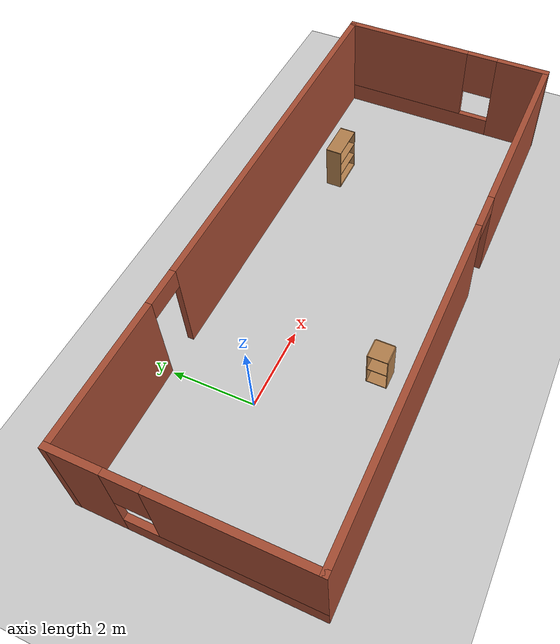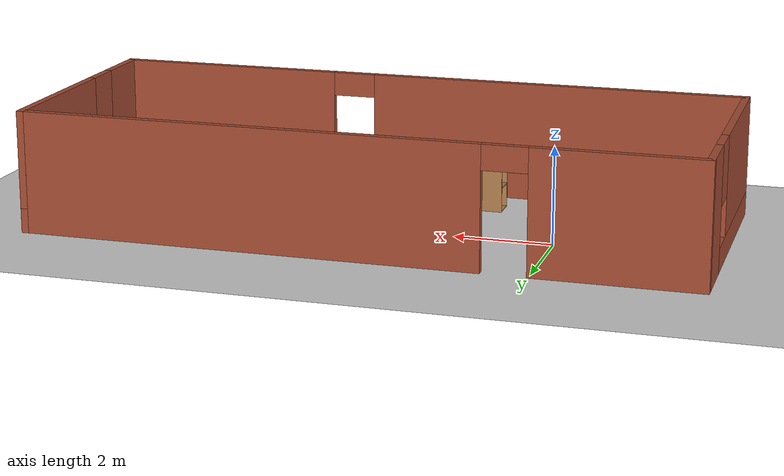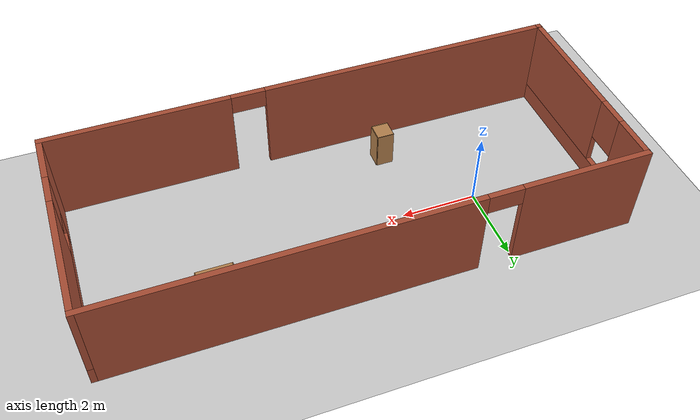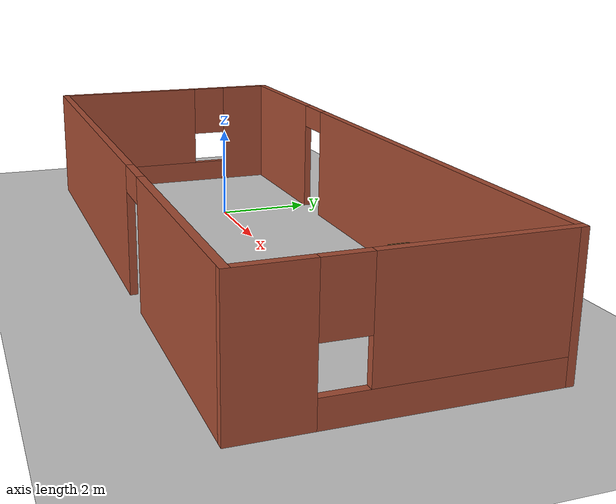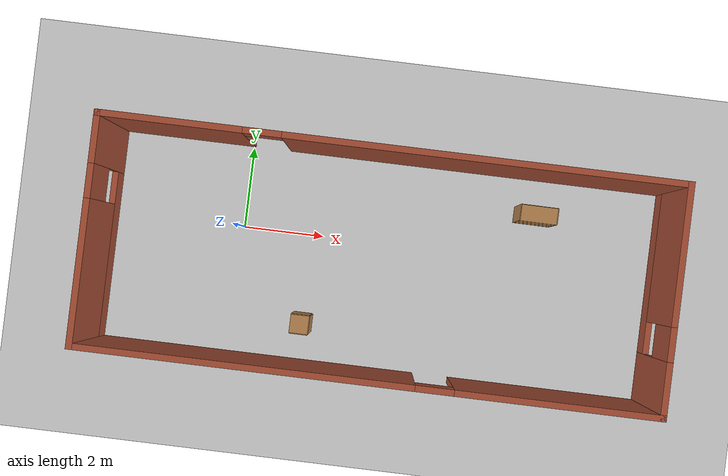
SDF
<sdf version="1.7">
 <world name="default">
  <light name="sun" type="directional">
   <pose>0 0 10 0 -0 0</pose>
   <diffuse>0.8 0.8 0.8 1</diffuse>
   <specular>0.2 0.2 0.2 1</specular>
   <attenuation>
    <range>1000</range>
    <constant>0.9</constant>
    <linear>0.01</linear>
    <quadratic>0.001</quadratic>
   </attenuation>
   <direction>-0.5 0.1 -0.9</direction>
   <spot><inner_angle>0</inner_angle><outer_angle>0</outer_angle><falloff>0</falloff></spot>
  </light>
  <model name="ground_plane">
   <static>1</static>
   <link name="link">
    <collision name="collision">
     <geometry><plane><normal>0 0 1</normal><size>100 100</size></plane></geometry>
     <surface><friction><ode><mu>100</mu><mu2>50</mu2></ode></friction></surface>
    </collision>
    <visual name="visual">
     <cast_shadows>0</cast_shadows>
     <geometry><plane><normal>0 0 1</normal><size>100 100</size></plane></geometry>
     <material>
      <script><uri>file://media/materials/scripts/gazebo.material</uri><name>Gazebo/Grey</name></script>
     </material>
    </visual>
   </link>
  </model>
  <gravity>0 0 -9.8</gravity>
  <magnetic_field>6e-06 2.3e-05 -4.2e-05</magnetic_field>
  <atmosphere type="adiabatic"/>
  <physics type="ode">
   <max_step_size>0.001</max_step_size>
   <real_time_factor>1</real_time_factor>
   <real_time_update_rate>1000</real_time_update_rate>
  </physics>
  <scene><ambient>0.4 0.4 0.4 1</ambient><background>0.7 0.7 0.7 1</background><shadows>1</shadows></scene>
  <audio><device>default</device></audio>
  <spherical_coordinates>
   <surface_model>EARTH_WGS84</surface_model>
   <latitude_deg>0</latitude_deg>
   <longitude_deg>0</longitude_deg>
   <elevation>0</elevation>
   <heading_deg>0</heading_deg>
  </spherical_coordinates>
  <model name="room">
   <pose>3.51668 -0.548778 0 0 -0 0</pose>
   <link name="Wall_3">
    <pose>-6.8 0 0 0 -0 -1.5708</pose>
    <visual name="Wall_3_Visual_0">
     <pose>-2.13217 0 1.25 0 -0 0</pose>
     <geometry><box><size>1.23567 0.15 2.5</size></box></geometry>
     <material>
      <script><uri>file://media/materials/scripts/gazebo.material</uri><name>Gazebo/Bricks</name></script>
      <ambient>1 1 1 1</ambient>
     </material>
     <meta><layer>0</layer></meta>
    </visual>
    <collision name="Wall_3_Collision_0">
     <geometry><box><size>1.23567 0.15 2.5</size></box></geometry>
     <pose>-2.13217 0 1.25 0 -0 0</pose>
    </collision>
    <visual name="Wall_3_Visual_1">
     <pose>0.617834 0 0.25 0 -0 0</pose>
     <geometry><box><size>4.26433 0.15 0.5</size></box></geometry>
     <material>
      <script><uri>file://media/materials/scripts/gazebo.material</uri><name>Gazebo/Bricks</name></script>
      <ambient>1 1 1 1</ambient>
     </material>
     <meta><layer>0</layer></meta>
    </visual>
    <collision name="Wall_3_Collision_1">
     <geometry><box><size>4.26433 0.15 0.5</size></box></geometry>
     <pose>0.617834 0 0.25 0 -0 0</pose>
    </collision>
    <visual name="Wall_3_Visual_2">
     <pose>1.01783 0 1.5 0 -0 0</pose>
     <geometry><box><size>3.46433 0.15 2</size></box></geometry>
     <material>
      <script><uri>file://media/materials/scripts/gazebo.material</uri><name>Gazebo/Bricks</name></script>
      <ambient>1 1 1 1</ambient>
     </material>
     <meta><layer>0</layer></meta>
    </visual>
    <collision name="Wall_3_Collision_2">
     <geometry><box><size>3.46433 0.15 2</size></box></geometry>
     <pose>1.01783 0 1.5 0 -0 0</pose>
    </collision>
    <visual name="Wall_3_Visual_3">
     <pose>-1.11433 0 1.9 0 -0 0</pose>
     <geometry><box><size>0.8 0.15 1.2</size></box></geometry>
     <material>
      <script><uri>file://media/materials/scripts/gazebo.material</uri><name>Gazebo/Bricks</name></script>
      <ambient>1 1 1 1</ambient>
     </material>
     <meta><layer>0</layer></meta>
    </visual>
    <collision name="Wall_3_Collision_3">
     <geometry><box><size>0.8 0.15 1.2</size></box></geometry>
     <pose>-1.11433 0 1.9 0 -0 0</pose>
    </collision>
   </link>
   <link name="Wall_4">
    <pose>-0 -2.675 0 0 -0 0</pose>
    <visual name="Wall_4_Visual_0">
     <pose>-2.87723 0 1.25 0 -0 0</pose>
     <geometry><box><size>7.99554 0.15 2.5</size></box></geometry>
     <material>
      <script><uri>file://media/materials/scripts/gazebo.material</uri><name>Gazebo/Bricks</name></script>
      <ambient>1 1 1 1</ambient>
     </material>
     <meta><layer>0</layer></meta>
    </visual>
    <collision name="Wall_4_Collision_0">
     <geometry><box><size>7.99554 0.15 2.5</size></box></geometry>
     <pose>-2.87723 0 1.25 0 -0 0</pose>
    </collision>
    <visual name="Wall_4_Visual_1">
     <pose>4.44777 0 1.25 0 -0 0</pose>
     <geometry><box><size>4.85446 0.15 2.5</size></box></geometry>
     <material>
      <script><uri>file://media/materials/scripts/gazebo.material</uri><name>Gazebo/Bricks</name></script>
      <ambient>1 1 1 1</ambient>
     </material>
     <meta><layer>0</layer></meta>
    </visual>
    <collision name="Wall_4_Collision_1">
     <geometry><box><size>4.85446 0.15 2.5</size></box></geometry>
     <pose>4.44777 0 1.25 0 -0 0</pose>
    </collision>
    <visual name="Wall_4_Visual_2">
     <pose>1.57054 0 2.25 0 -0 0</pose>
     <geometry><box><size>0.9 0.15 0.5</size></box></geometry>
     <material>
      <script><uri>file://media/materials/scripts/gazebo.material</uri><name>Gazebo/Bricks</name></script>
      <ambient>1 1 1 1</ambient>
     </material>
     <meta><layer>0</layer></meta>
    </visual>
    <collision name="Wall_4_Collision_2">
     <geometry><box><size>0.9 0.15 0.5</size></box></geometry>
     <pose>1.57054 0 2.25 0 -0 0</pose>
    </collision>
   </link>
   <link name="Wall_5">
    <pose>6.8 0 0 0 -0 1.5708</pose>
    <visual name="Wall_5_Visual_0">
     <pose>-2.07028 0 1.25 0 -0 0</pose>
     <geometry><box><size>1.35945 0.15 2.5</size></box></geometry>
     <material>
      <script><uri>file://media/materials/scripts/gazebo.material</uri><name>Gazebo/Bricks</name></script>
      <ambient>1 1 1 1</ambient>
     </material>
     <meta><layer>0</layer></meta>
    </visual>
    <collision name="Wall_5_Collision_0">
     <geometry><box><size>1.35945 0.15 2.5</size></box></geometry>
     <pose>-2.07028 0 1.25 0 -0 0</pose>
    </collision>
    <visual name="Wall_5_Visual_1">
     <pose>0.679724 0 0.25 0 -0 0</pose>
     <geometry><box><size>4.14055 0.15 0.5</size></box></geometry>
     <material>
      <script><uri>file://media/materials/scripts/gazebo.material</uri><name>Gazebo/Bricks</name></script>
      <ambient>1 1 1 1</ambient>
     </material>
     <meta><layer>0</layer></meta>
    </visual>
    <collision name="Wall_5_Collision_1">
     <geometry><box><size>4.14055 0.15 0.5</size></box></geometry>
     <pose>0.679724 0 0.25 0 -0 0</pose>
    </collision>
    <visual name="Wall_5_Visual_2">
     <pose>1.07972 0 1.5 0 -0 0</pose>
     <geometry><box><size>3.34055 0.15 2</size></box></geometry>
     <material>
      <script><uri>file://media/materials/scripts/gazebo.material</uri><name>Gazebo/Bricks</name></script>
      <ambient>1 1 1 1</ambient>
     </material>
     <meta><layer>0</layer></meta>
    </visual>
    <collision name="Wall_5_Collision_2">
     <geometry><box><size>3.34055 0.15 2</size></box></geometry>
     <pose>1.07972 0 1.5 0 -0 0</pose>
    </collision>
    <visual name="Wall_5_Visual_3">
     <pose>-0.990553 0 1.9 0 -0 0</pose>
     <geometry><box><size>0.8 0.15 1.2</size></box></geometry>
     <material>
      <script><uri>file://media/materials/scripts/gazebo.material</uri><name>Gazebo/Bricks</name></script>
      <ambient>1 1 1 1</ambient>
     </material>
     <meta><layer>0</layer></meta>
    </visual>
    <collision name="Wall_5_Collision_3">
     <geometry><box><size>0.8 0.15 1.2</size></box></geometry>
     <pose>-0.990553 0 1.9 0 -0 0</pose>
    </collision>
   </link>
   <link name="Wall_6">
    <pose>-0 2.675 0 0 -0 3.14159</pose>
    <visual name="Wall_6_Visual_0">
     <pose>-2.14627 0 1.25 0 -0 0</pose>
     <geometry><box><size>9.45745 0.15 2.5</size></box></geometry>
     <material>
      <script><uri>file://media/materials/scripts/gazebo.material</uri><name>Gazebo/Bricks</name></script>
      <ambient>1 1 1 1</ambient>
     </material>
     <meta><layer>0</layer></meta>
    </visual>
    <collision name="Wall_6_Collision_0">
     <geometry><box><size>9.45745 0.15 2.5</size></box></geometry>
     <pose>-2.14627 0 1.25 0 -0 0</pose>
    </collision>
    <visual name="Wall_6_Visual_1">
     <pose>5.17873 0 1.25 0 -0 0</pose>
     <geometry><box><size>3.39255 0.15 2.5</size></box></geometry>
     <material>
      <script><uri>file://media/materials/scripts/gazebo.material</uri><name>Gazebo/Bricks</name></script>
      <ambient>1 1 1 1</ambient>
     </material>
     <meta><layer>0</layer></meta>
    </visual>
    <collision name="Wall_6_Collision_1">
     <geometry><box><size>3.39255 0.15 2.5</size></box></geometry>
     <pose>5.17873 0 1.25 0 -0 0</pose>
    </collision>
    <visual name="Wall_6_Visual_2">
     <pose>3.03245 0 2.25 0 -0 0</pose>
     <geometry><box><size>0.9 0.15 0.5</size></box></geometry>
     <material>
      <script><uri>file://media/materials/scripts/gazebo.material</uri><name>Gazebo/Bricks</name></script>
      <ambient>1 1 1 1</ambient>
     </material>
     <meta><layer>0</layer></meta>
    </visual>
    <collision name="Wall_6_Collision_2">
     <geometry><box><size>0.9 0.15 0.5</size></box></geometry>
     <pose>3.03245 0 2.25 0 -0 0</pose>
    </collision>
   </link>
   <static>1</static>
  </model>
  <model name="cabinet">
   <static>1</static>
   <link name="cabinet_bottom_plate">
    <inertial>
     <pose>0 0 -1 0 -0 0</pose>
     <inertia><ixx>2.05</ixx><ixy>0</ixy><ixz>0</ixz><iyy>2.05</iyy><iyz>0</iyz><izz>2.05</izz></inertia>
     <mass>25</mass>
    </inertial>
    <collision name="cabinet_bottom_plate_geom">
     <pose>0 0 0.01 0 -0 0</pose>
     <geometry><box><size>0.45 0.45 0.02</size></box></geometry>
    </collision>
    <visual name="cabinet_bottom_plate_geom_visual">
     <pose>0 0 0.01 0 -0 0</pose>
     <geometry><box><size>0.45 0.45 0.02</size></box></geometry>
     <material>
      <script><uri>file://media/materials/scripts/gazebo.material</uri><name>Gazebo/Wood</name></script>
     </material>
    </visual>
    <collision name="cabinet_bottom_plate_geom_cabinet_back_plate">
     <pose>0.235 0 0.51 0 -0 0</pose>
     <geometry><box><size>0.02 0.45 1.02</size></box></geometry>
    </collision>
    <visual name="cabinet_bottom_plate_geom_cabinet_back_plate_visual">
     <pose>0.235 0 0.51 0 -0 0</pose>
     <geometry><box><size>0.02 0.45 1.02</size></box></geometry>
     <material>
      <script><uri>file://media/materials/scripts/gazebo.material</uri><name>Gazebo/Wood</name></script>
     </material>
    </visual>
    <collision name="cabinet_bottom_plate_geom_cabinet_left_plate">
     <pose>0 0.235 0.51 0 -0 0</pose>
     <geometry><box><size>0.45 0.02 1.02</size></box></geometry>
    </collision>
    <visual name="cabinet_bottom_plate_geom_cabinet_left_plate_visual">
     <pose>0 0.235 0.51 0 -0 0</pose>
     <geometry><box><size>0.45 0.02 1.02</size></box></geometry>
     <material>
      <script><uri>file://media/materials/scripts/gazebo.material</uri><name>Gazebo/Wood</name></script>
     </material>
    </visual>
    <collision name="cabinet_bottom_plate_geom_cabinet_middle_plate">
     <pose>0 0 0.51 0 -0 0</pose>
     <geometry><box><size>0.45 0.45 0.02</size></box></geometry>
    </collision>
    <visual name="cabinet_bottom_plate_geom_cabinet_middle_plate_visual">
     <pose>0 0 0.51 0 -0 0</pose>
     <geometry><box><size>0.45 0.45 0.02</size></box></geometry>
     <material>
      <script><uri>file://media/materials/scripts/gazebo.material</uri><name>Gazebo/Wood</name></script>
     </material>
    </visual>
    <collision name="cabinet_bottom_plate_geom_cabinet_right_plate">
     <pose>0 -0.235 0.51 0 -0 0</pose>
     <geometry><box><size>0.45 0.02 1.02</size></box></geometry>
    </collision>
    <visual name="cabinet_bottom_plate_geom_cabinet_right_plate_visual">
     <pose>0 -0.235 0.51 0 -0 0</pose>
     <geometry><box><size>0.45 0.02 1.02</size></box></geometry>
     <material>
      <script><uri>file://media/materials/scripts/gazebo.material</uri><name>Gazebo/Wood</name></script>
     </material>
    </visual>
    <collision name="cabinet_bottom_plate_geom_cabinet_top_plate">
     <pose>0 0 1.01 0 -0 0</pose>
     <geometry><box><size>0.45 0.45 0.02</size></box></geometry>
    </collision>
    <visual name="cabinet_bottom_plate_geom_cabinet_top_plate_visual">
     <pose>0 0 1.01 0 -0 0</pose>
     <geometry><box><size>0.45 0.45 0.02</size></box></geometry>
     <material>
      <script><uri>file://media/materials/scripts/gazebo.material</uri><name>Gazebo/Wood</name></script>
     </material>
    </visual>
   </link>
   <pose>1.73243 -2.20639 0.009293 0 -0 0</pose>
  </model>
  <model name="bookshelf">
   <static>1</static>
   <link name="link">
    <inertial><mass>1</mass></inertial>
    <collision name="back">
     <pose>0 0.005 0.6 0 -0 0</pose>
     <geometry><box><size>0.9 0.01 1.2</size></box></geometry>
    </collision>
    <visual name="visual1">
     <pose>0 0.005 0.6 0 -0 0</pose>
     <geometry><box><size>0.9 0.01 1.2</size></box></geometry>
     <material>
      <script><uri>file://media/materials/scripts/gazebo.material</uri><name>Gazebo/Wood</name></script>
     </material>
    </visual>
    <collision name="left_side">
     <pose>0.45 -0.195 0.6 0 -0 0</pose>
     <geometry><box><size>0.02 0.4 1.2</size></box></geometry>
    </collision>
    <visual name="visual2">
     <pose>0.45 -0.195 0.6 0 -0 0</pose>
     <geometry><box><size>0.02 0.4 1.2</size></box></geometry>
     <material>
      <script><uri>file://media/materials/scripts/gazebo.material</uri><name>Gazebo/Wood</name></script>
     </material>
    </visual>
    <collision name="right_side">
     <pose>-0.45 -0.195 0.6 0 -0 0</pose>
     <geometry><box><size>0.02 0.4 1.2</size></box></geometry>
    </collision>
    <visual name="visual3">
     <pose>-0.45 -0.195 0.6 0 -0 0</pose>
     <geometry><box><size>0.02 0.4 1.2</size></box></geometry>
     <material>
      <script><uri>file://media/materials/scripts/gazebo.material</uri><name>Gazebo/Wood</name></script>
     </material>
    </visual>
    <collision name="bottom">
     <pose>0 -0.195 0.03 0 -0 0</pose>
     <geometry><box><size>0.88 0.4 0.06</size></box></geometry>
    </collision>
    <visual name="visual4">
     <pose>0 -0.195 0.03 0 -0 0</pose>
     <geometry><box><size>0.88 0.4 0.06</size></box></geometry>
     <material>
      <script><uri>file://media/materials/scripts/gazebo.material</uri><name>Gazebo/Wood</name></script>
     </material>
    </visual>
    <collision name="top">
     <pose>0 -0.195 1.19 0 -0 0</pose>
     <geometry><box><size>0.88 0.4 0.02</size></box></geometry>
    </collision>
    <visual name="visual5">
     <pose>0 -0.195 1.19 0 -0 0</pose>
     <geometry><box><size>0.88 0.4 0.02</size></box></geometry>
     <material>
      <script><uri>file://media/materials/scripts/gazebo.material</uri><name>Gazebo/Wood</name></script>
     </material>
    </visual>
    <collision name="low_shelf">
     <pose>0 -0.195 0.43 0 -0 0</pose>
     <geometry><box><size>0.88 0.4 0.02</size></box></geometry>
    </collision>
    <visual name="visual6">
     <pose>0 -0.195 0.43 0 -0 0</pose>
     <geometry><box><size>0.88 0.4 0.02</size></box></geometry>
     <material>
      <script><uri>file://media/materials/scripts/gazebo.material</uri><name>Gazebo/Wood</name></script>
     </material>
    </visual>
    <collision name="high_shelf">
     <pose>0 -0.195 0.8 0 -0 0</pose>
     <geometry><box><size>0.88 0.4 0.02</size></box></geometry>
    </collision>
    <visual name="visual7">
     <pose>0 -0.195 0.8 0 -0 0</pose>
     <geometry><box><size>0.88 0.4 0.02</size></box></geometry>
     <material>
      <script><uri>file://media/materials/scripts/gazebo.material</uri><name>Gazebo/Wood</name></script>
     </material>
    </visual>
   </link>
   <pose>7.17421 1.32712 0 0 0 -0.005714</pose>
  </model>
 </world>
</sdf>
